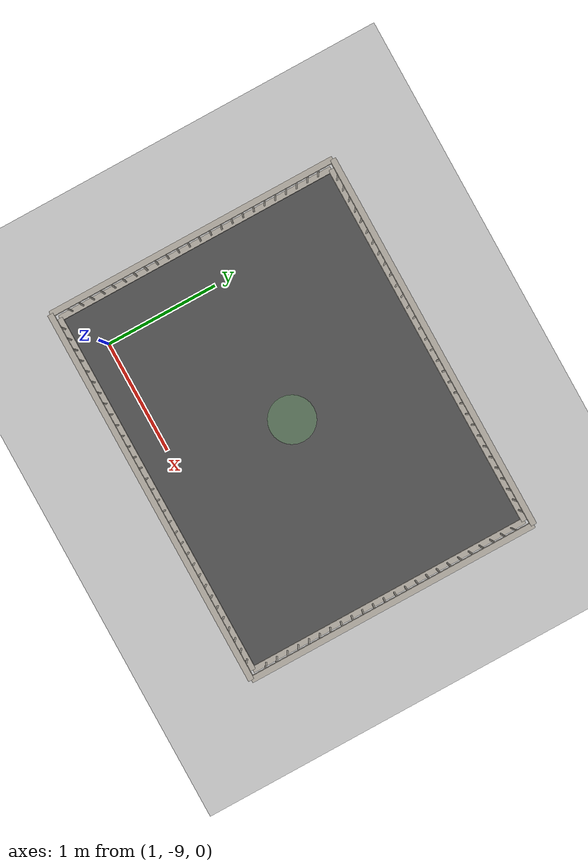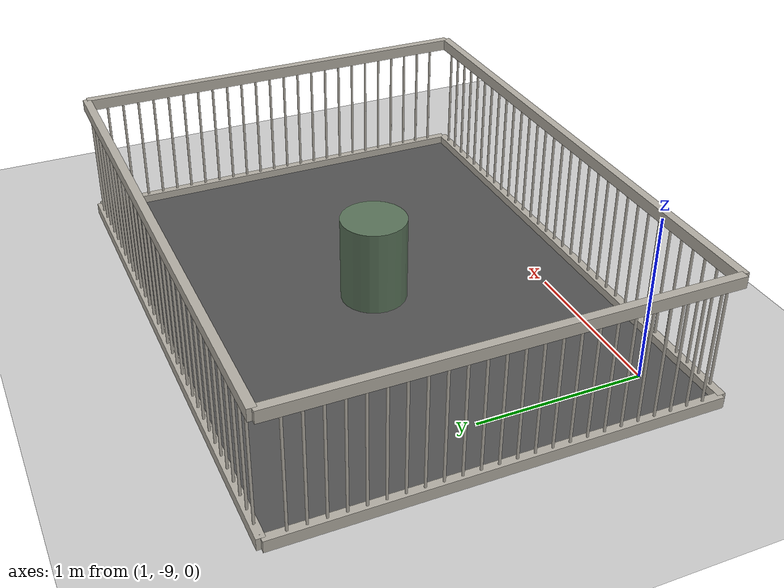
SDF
<sdf version="1.9">
 <world name="pig_pen_16units_world">
  <model name="ground_plane">
   <static>true</static>
   <link name="link">
    <collision name="collision">
     <geometry><plane><normal>0 0 1</normal><size>30 30</size></plane></geometry>
     <surface><friction><ode><mu>1.0</mu><mu2>1.0</mu2></ode></friction></surface>
    </collision>
    <visual name="visual">
     <geometry><plane><normal>0 0 1</normal><size>30 30</size></plane></geometry>
     <material>
      <ambient>0.8 0.8 0.8 1</ambient>
      <diffuse>0.8 0.8 0.8 1</diffuse>
      <specular>0.2 0.2 0.2 1</specular>
     </material>
    </visual>
   </link>
  </model>
  <model name="pen9">
   <pose>2.275 -7.975 0 0 0 0</pose>
   <static>true</static>
   <link name="floor">
    <pose>0 0 0.01 0 0 0</pose>
    <collision name="collision"><geometry><box><size>3.30 2.55 0.02</size></box></geometry></collision>
    <visual name="visual">
     <geometry><box><size>3.30 2.55 0.02</size></box></geometry>
     <material>
      <ambient>0.25 0.25 0.25 1</ambient>
      <diffuse>0.32 0.32 0.32 1</diffuse>
      <specular>0.05 0.05 0.05 1</specular>
     </material>
    </visual>
   </link>
   <link name="left_wall">
    <pose>0 1.275 0.415 0 0 0</pose>
    <collision name="top_rail_col">
     <pose>0 0 0.38 0 0 0</pose>
     <geometry><box><size>3.30 0.05 0.07</size></box></geometry>
    </collision>
    <visual name="top_rail_vis">
     <pose>0 0 0.38 0 0 0</pose>
     <geometry><box><size>3.30 0.05 0.07</size></box></geometry>
     <material><ambient>0.70 0.68 0.64 1</ambient><diffuse>0.70 0.68 0.64 1</diffuse></material>
    </visual>
    <collision name="bottom_rail_col">
     <pose>0 0 -0.38 0 0 0</pose>
     <geometry><box><size>3.30 0.05 0.07</size></box></geometry>
    </collision>
    <visual name="bottom_rail_vis">
     <pose>0 0 -0.38 0 0 0</pose>
     <geometry><box><size>3.30 0.05 0.07</size></box></geometry>
     <material><ambient>0.70 0.68 0.64 1</ambient><diffuse>0.70 0.68 0.64 1</diffuse></material>
    </visual>
    <collision name="bar_01_col">
     <pose>-1.55 0 0 0 0 0</pose>
     <geometry><cylinder><radius>0.0075</radius><length>0.69</length></cylinder></geometry>
    </collision>
    <visual name="bar_01_vis">
     <pose>-1.55 0 0 0 0 0</pose>
     <geometry><cylinder><radius>0.0075</radius><length>0.69</length></cylinder></geometry>
     <material><ambient>0.70 0.68 0.64 1</ambient><diffuse>0.70 0.68 0.64 1</diffuse></material>
    </visual>
    <collision name="bar_02_col">
     <pose>-1.45 0 0 0 0 0</pose>
     <geometry><cylinder><radius>0.0075</radius><length>0.69</length></cylinder></geometry>
    </collision>
    <visual name="bar_02_vis">
     <pose>-1.45 0 0 0 0 0</pose>
     <geometry><cylinder><radius>0.0075</radius><length>0.69</length></cylinder></geometry>
     <material><ambient>0.70 0.68 0.64 1</ambient><diffuse>0.70 0.68 0.64 1</diffuse></material>
    </visual>
    <collision name="bar_03_col">
     <pose>-1.35 0 0 0 0 0</pose>
     <geometry><cylinder><radius>0.0075</radius><length>0.69</length></cylinder></geometry>
    </collision>
    <visual name="bar_03_vis">
     <pose>-1.35 0 0 0 0 0</pose>
     <geometry><cylinder><radius>0.0075</radius><length>0.69</length></cylinder></geometry>
     <material><ambient>0.70 0.68 0.64 1</ambient><diffuse>0.70 0.68 0.64 1</diffuse></material>
    </visual>
    <collision name="bar_04_col">
     <pose>-1.25 0 0 0 0 0</pose>
     <geometry><cylinder><radius>0.0075</radius><length>0.69</length></cylinder></geometry>
    </collision>
    <visual name="bar_04_vis">
     <pose>-1.25 0 0 0 0 0</pose>
     <geometry><cylinder><radius>0.0075</radius><length>0.69</length></cylinder></geometry>
     <material><ambient>0.70 0.68 0.64 1</ambient><diffuse>0.70 0.68 0.64 1</diffuse></material>
    </visual>
    <collision name="bar_05_col">
     <pose>-1.15 0 0 0 0 0</pose>
     <geometry><cylinder><radius>0.0075</radius><length>0.69</length></cylinder></geometry>
    </collision>
    <visual name="bar_05_vis">
     <pose>-1.15 0 0 0 0 0</pose>
     <geometry><cylinder><radius>0.0075</radius><length>0.69</length></cylinder></geometry>
     <material><ambient>0.70 0.68 0.64 1</ambient><diffuse>0.70 0.68 0.64 1</diffuse></material>
    </visual>
    <collision name="bar_06_col">
     <pose>-1.05 0 0 0 0 0</pose>
     <geometry><cylinder><radius>0.0075</radius><length>0.69</length></cylinder></geometry>
    </collision>
    <visual name="bar_06_vis">
     <pose>-1.05 0 0 0 0 0</pose>
     <geometry><cylinder><radius>0.0075</radius><length>0.69</length></cylinder></geometry>
     <material><ambient>0.70 0.68 0.64 1</ambient><diffuse>0.70 0.68 0.64 1</diffuse></material>
    </visual>
    <collision name="bar_07_col">
     <pose>-0.95 0 0 0 0 0</pose>
     <geometry><cylinder><radius>0.0075</radius><length>0.69</length></cylinder></geometry>
    </collision>
    <visual name="bar_07_vis">
     <pose>-0.95 0 0 0 0 0</pose>
     <geometry><cylinder><radius>0.0075</radius><length>0.69</length></cylinder></geometry>
     <material><ambient>0.70 0.68 0.64 1</ambient><diffuse>0.70 0.68 0.64 1</diffuse></material>
    </visual>
    <collision name="bar_08_col">
     <pose>-0.85 0 0 0 0 0</pose>
     <geometry><cylinder><radius>0.0075</radius><length>0.69</length></cylinder></geometry>
    </collision>
    <visual name="bar_08_vis">
     <pose>-0.85 0 0 0 0 0</pose>
     <geometry><cylinder><radius>0.0075</radius><length>0.69</length></cylinder></geometry>
     <material><ambient>0.70 0.68 0.64 1</ambient><diffuse>0.70 0.68 0.64 1</diffuse></material>
    </visual>
    <collision name="bar_09_col">
     <pose>-0.75 0 0 0 0 0</pose>
     <geometry><cylinder><radius>0.0075</radius><length>0.69</length></cylinder></geometry>
    </collision>
    <visual name="bar_09_vis">
     <pose>-0.75 0 0 0 0 0</pose>
     <geometry><cylinder><radius>0.0075</radius><length>0.69</length></cylinder></geometry>
     <material><ambient>0.70 0.68 0.64 1</ambient><diffuse>0.70 0.68 0.64 1</diffuse></material>
    </visual>
    <collision name="bar_10_col">
     <pose>-0.65 0 0 0 0 0</pose>
     <geometry><cylinder><radius>0.0075</radius><length>0.69</length></cylinder></geometry>
    </collision>
    <visual name="bar_10_vis">
     <pose>-0.65 0 0 0 0 0</pose>
     <geometry><cylinder><radius>0.0075</radius><length>0.69</length></cylinder></geometry>
     <material><ambient>0.70 0.68 0.64 1</ambient><diffuse>0.70 0.68 0.64 1</diffuse></material>
    </visual>
    <collision name="bar_11_col">
     <pose>-0.55 0 0 0 0 0</pose>
     <geometry><cylinder><radius>0.0075</radius><length>0.69</length></cylinder></geometry>
    </collision>
    <visual name="bar_11_vis">
     <pose>-0.55 0 0 0 0 0</pose>
     <geometry><cylinder><radius>0.0075</radius><length>0.69</length></cylinder></geometry>
     <material><ambient>0.70 0.68 0.64 1</ambient><diffuse>0.70 0.68 0.64 1</diffuse></material>
    </visual>
    <collision name="bar_12_col">
     <pose>-0.45 0 0 0 0 0</pose>
     <geometry><cylinder><radius>0.0075</radius><length>0.69</length></cylinder></geometry>
    </collision>
    <visual name="bar_12_vis">
     <pose>-0.45 0 0 0 0 0</pose>
     <geometry><cylinder><radius>0.0075</radius><length>0.69</length></cylinder></geometry>
     <material><ambient>0.70 0.68 0.64 1</ambient><diffuse>0.70 0.68 0.64 1</diffuse></material>
    </visual>
    <collision name="bar_13_col">
     <pose>-0.35 0 0 0 0 0</pose>
     <geometry><cylinder><radius>0.0075</radius><length>0.69</length></cylinder></geometry>
    </collision>
    <visual name="bar_13_vis">
     <pose>-0.35 0 0 0 0 0</pose>
     <geometry><cylinder><radius>0.0075</radius><length>0.69</length></cylinder></geometry>
     <material><ambient>0.70 0.68 0.64 1</ambient><diffuse>0.70 0.68 0.64 1</diffuse></material>
    </visual>
    <collision name="bar_14_col">
     <pose>-0.25 0 0 0 0 0</pose>
     <geometry><cylinder><radius>0.0075</radius><length>0.69</length></cylinder></geometry>
    </collision>
    <visual name="bar_14_vis">
     <pose>-0.25 0 0 0 0 0</pose>
     <geometry><cylinder><radius>0.0075</radius><length>0.69</length></cylinder></geometry>
     <material><ambient>0.70 0.68 0.64 1</ambient><diffuse>0.70 0.68 0.64 1</diffuse></material>
    </visual>
    <collision name="bar_15_col">
     <pose>-0.15 0 0 0 0 0</pose>
     <geometry><cylinder><radius>0.0075</radius><length>0.69</length></cylinder></geometry>
    </collision>
    <visual name="bar_15_vis">
     <pose>-0.15 0 0 0 0 0</pose>
     <geometry><cylinder><radius>0.0075</radius><length>0.69</length></cylinder></geometry>
     <material><ambient>0.70 0.68 0.64 1</ambient><diffuse>0.70 0.68 0.64 1</diffuse></material>
    </visual>
    <collision name="bar_16_col">
     <pose>-0.05 0 0 0 0 0</pose>
     <geometry><cylinder><radius>0.0075</radius><length>0.69</length></cylinder></geometry>
    </collision>
    <visual name="bar_16_vis">
     <pose>-0.05 0 0 0 0 0</pose>
     <geometry><cylinder><radius>0.0075</radius><length>0.69</length></cylinder></geometry>
     <material><ambient>0.70 0.68 0.64 1</ambient><diffuse>0.70 0.68 0.64 1</diffuse></material>
    </visual>
    <collision name="bar_17_col">
     <pose>0.05 0 0 0 0 0</pose>
     <geometry><cylinder><radius>0.0075</radius><length>0.69</length></cylinder></geometry>
    </collision>
    <visual name="bar_17_vis">
     <pose>0.05 0 0 0 0 0</pose>
     <geometry><cylinder><radius>0.0075</radius><length>0.69</length></cylinder></geometry>
     <material><ambient>0.70 0.68 0.64 1</ambient><diffuse>0.70 0.68 0.64 1</diffuse></material>
    </visual>
    <collision name="bar_18_col">
     <pose>0.15 0 0 0 0 0</pose>
     <geometry><cylinder><radius>0.0075</radius><length>0.69</length></cylinder></geometry>
    </collision>
    <visual name="bar_18_vis">
     <pose>0.15 0 0 0 0 0</pose>
     <geometry><cylinder><radius>0.0075</radius><length>0.69</length></cylinder></geometry>
     <material><ambient>0.70 0.68 0.64 1</ambient><diffuse>0.70 0.68 0.64 1</diffuse></material>
    </visual>
    <collision name="bar_19_col">
     <pose>0.25 0 0 0 0 0</pose>
     <geometry><cylinder><radius>0.0075</radius><length>0.69</length></cylinder></geometry>
    </collision>
    <visual name="bar_19_vis">
     <pose>0.25 0 0 0 0 0</pose>
     <geometry><cylinder><radius>0.0075</radius><length>0.69</length></cylinder></geometry>
     <material><ambient>0.70 0.68 0.64 1</ambient><diffuse>0.70 0.68 0.64 1</diffuse></material>
    </visual>
    <collision name="bar_20_col">
     <pose>0.35 0 0 0 0 0</pose>
     <geometry><cylinder><radius>0.0075</radius><length>0.69</length></cylinder></geometry>
    </collision>
    <visual name="bar_20_vis">
     <pose>0.35 0 0 0 0 0</pose>
     <geometry><cylinder><radius>0.0075</radius><length>0.69</length></cylinder></geometry>
     <material><ambient>0.70 0.68 0.64 1</ambient><diffuse>0.70 0.68 0.64 1</diffuse></material>
    </visual>
    <collision name="bar_21_col">
     <pose>0.45 0 0 0 0 0</pose>
     <geometry><cylinder><radius>0.0075</radius><length>0.69</length></cylinder></geometry>
    </collision>
    <visual name="bar_21_vis">
     <pose>0.45 0 0 0 0 0</pose>
     <geometry><cylinder><radius>0.0075</radius><length>0.69</length></cylinder></geometry>
     <material><ambient>0.70 0.68 0.64 1</ambient><diffuse>0.70 0.68 0.64 1</diffuse></material>
    </visual>
    <collision name="bar_22_col">
     <pose>0.55 0 0 0 0 0</pose>
     <geometry><cylinder><radius>0.0075</radius><length>0.69</length></cylinder></geometry>
    </collision>
    <visual name="bar_22_vis">
     <pose>0.55 0 0 0 0 0</pose>
     <geometry><cylinder><radius>0.0075</radius><length>0.69</length></cylinder></geometry>
     <material><ambient>0.70 0.68 0.64 1</ambient><diffuse>0.70 0.68 0.64 1</diffuse></material>
    </visual>
    <collision name="bar_23_col">
     <pose>0.65 0 0 0 0 0</pose>
     <geometry><cylinder><radius>0.0075</radius><length>0.69</length></cylinder></geometry>
    </collision>
    <visual name="bar_23_vis">
     <pose>0.65 0 0 0 0 0</pose>
     <geometry><cylinder><radius>0.0075</radius><length>0.69</length></cylinder></geometry>
     <material><ambient>0.70 0.68 0.64 1</ambient><diffuse>0.70 0.68 0.64 1</diffuse></material>
    </visual>
    <collision name="bar_24_col">
     <pose>0.75 0 0 0 0 0</pose>
     <geometry><cylinder><radius>0.0075</radius><length>0.69</length></cylinder></geometry>
    </collision>
    <visual name="bar_24_vis">
     <pose>0.75 0 0 0 0 0</pose>
     <geometry><cylinder><radius>0.0075</radius><length>0.69</length></cylinder></geometry>
     <material><ambient>0.70 0.68 0.64 1</ambient><diffuse>0.70 0.68 0.64 1</diffuse></material>
    </visual>
    <collision name="bar_25_col">
     <pose>0.85 0 0 0 0 0</pose>
     <geometry><cylinder><radius>0.0075</radius><length>0.69</length></cylinder></geometry>
    </collision>
    <visual name="bar_25_vis">
     <pose>0.85 0 0 0 0 0</pose>
     <geometry><cylinder><radius>0.0075</radius><length>0.69</length></cylinder></geometry>
     <material><ambient>0.70 0.68 0.64 1</ambient><diffuse>0.70 0.68 0.64 1</diffuse></material>
    </visual>
    <collision name="bar_26_col">
     <pose>0.95 0 0 0 0 0</pose>
     <geometry><cylinder><radius>0.0075</radius><length>0.69</length></cylinder></geometry>
    </collision>
    <visual name="bar_26_vis">
     <pose>0.95 0 0 0 0 0</pose>
     <geometry><cylinder><radius>0.0075</radius><length>0.69</length></cylinder></geometry>
     <material><ambient>0.70 0.68 0.64 1</ambient><diffuse>0.70 0.68 0.64 1</diffuse></material>
    </visual>
    <collision name="bar_27_col">
     <pose>1.05 0 0 0 0 0</pose>
     <geometry><cylinder><radius>0.0075</radius><length>0.69</length></cylinder></geometry>
    </collision>
    <visual name="bar_27_vis">
     <pose>1.05 0 0 0 0 0</pose>
     <geometry><cylinder><radius>0.0075</radius><length>0.69</length></cylinder></geometry>
     <material><ambient>0.70 0.68 0.64 1</ambient><diffuse>0.70 0.68 0.64 1</diffuse></material>
    </visual>
    <collision name="bar_28_col">
     <pose>1.15 0 0 0 0 0</pose>
     <geometry><cylinder><radius>0.0075</radius><length>0.69</length></cylinder></geometry>
    </collision>
    <visual name="bar_28_vis">
     <pose>1.15 0 0 0 0 0</pose>
     <geometry><cylinder><radius>0.0075</radius><length>0.69</length></cylinder></geometry>
     <material><ambient>0.70 0.68 0.64 1</ambient><diffuse>0.70 0.68 0.64 1</diffuse></material>
    </visual>
    <collision name="bar_29_col">
     <pose>1.25 0 0 0 0 0</pose>
     <geometry><cylinder><radius>0.0075</radius><length>0.69</length></cylinder></geometry>
    </collision>
    <visual name="bar_29_vis">
     <pose>1.25 0 0 0 0 0</pose>
     <geometry><cylinder><radius>0.0075</radius><length>0.69</length></cylinder></geometry>
     <material><ambient>0.70 0.68 0.64 1</ambient><diffuse>0.70 0.68 0.64 1</diffuse></material>
    </visual>
    <collision name="bar_30_col">
     <pose>1.35 0 0 0 0 0</pose>
     <geometry><cylinder><radius>0.0075</radius><length>0.69</length></cylinder></geometry>
    </collision>
    <visual name="bar_30_vis">
     <pose>1.35 0 0 0 0 0</pose>
     <geometry><cylinder><radius>0.0075</radius><length>0.69</length></cylinder></geometry>
     <material><ambient>0.70 0.68 0.64 1</ambient><diffuse>0.70 0.68 0.64 1</diffuse></material>
    </visual>
    <collision name="bar_31_col">
     <pose>1.45 0 0 0 0 0</pose>
     <geometry><cylinder><radius>0.0075</radius><length>0.69</length></cylinder></geometry>
    </collision>
    <visual name="bar_31_vis">
     <pose>1.45 0 0 0 0 0</pose>
     <geometry><cylinder><radius>0.0075</radius><length>0.69</length></cylinder></geometry>
     <material><ambient>0.70 0.68 0.64 1</ambient><diffuse>0.70 0.68 0.64 1</diffuse></material>
    </visual>
    <collision name="bar_32_col">
     <pose>1.55 0 0 0 0 0</pose>
     <geometry><cylinder><radius>0.0075</radius><length>0.69</length></cylinder></geometry>
    </collision>
    <visual name="bar_32_vis">
     <pose>1.55 0 0 0 0 0</pose>
     <geometry><cylinder><radius>0.0075</radius><length>0.69</length></cylinder></geometry>
     <material><ambient>0.70 0.68 0.64 1</ambient><diffuse>0.70 0.68 0.64 1</diffuse></material>
    </visual>
   </link>
   <link name="right_wall">
    <pose>0 -1.275 0.415 0 0 0</pose>
    <collision name="top_rail_col">
     <pose>0 0 0.38 0 0 0</pose>
     <geometry><box><size>3.30 0.05 0.07</size></box></geometry>
    </collision>
    <visual name="top_rail_vis">
     <pose>0 0 0.38 0 0 0</pose>
     <geometry><box><size>3.30 0.05 0.07</size></box></geometry>
     <material><ambient>0.70 0.68 0.64 1</ambient><diffuse>0.70 0.68 0.64 1</diffuse></material>
    </visual>
    <collision name="bottom_rail_col">
     <pose>0 0 -0.38 0 0 0</pose>
     <geometry><box><size>3.30 0.05 0.07</size></box></geometry>
    </collision>
    <visual name="bottom_rail_vis">
     <pose>0 0 -0.38 0 0 0</pose>
     <geometry><box><size>3.30 0.05 0.07</size></box></geometry>
     <material><ambient>0.70 0.68 0.64 1</ambient><diffuse>0.70 0.68 0.64 1</diffuse></material>
    </visual>
    <collision name="bar_01_col">
     <pose>-1.55 0 0 0 0 0</pose>
     <geometry><cylinder><radius>0.0075</radius><length>0.69</length></cylinder></geometry>
    </collision>
    <visual name="bar_01_vis">
     <pose>-1.55 0 0 0 0 0</pose>
     <geometry><cylinder><radius>0.0075</radius><length>0.69</length></cylinder></geometry>
     <material><ambient>0.70 0.68 0.64 1</ambient><diffuse>0.70 0.68 0.64 1</diffuse></material>
    </visual>
    <collision name="bar_02_col">
     <pose>-1.45 0 0 0 0 0</pose>
     <geometry><cylinder><radius>0.0075</radius><length>0.69</length></cylinder></geometry>
    </collision>
    <visual name="bar_02_vis">
     <pose>-1.45 0 0 0 0 0</pose>
     <geometry><cylinder><radius>0.0075</radius><length>0.69</length></cylinder></geometry>
     <material><ambient>0.70 0.68 0.64 1</ambient><diffuse>0.70 0.68 0.64 1</diffuse></material>
    </visual>
    <collision name="bar_03_col">
     <pose>-1.35 0 0 0 0 0</pose>
     <geometry><cylinder><radius>0.0075</radius><length>0.69</length></cylinder></geometry>
    </collision>
    <visual name="bar_03_vis">
     <pose>-1.35 0 0 0 0 0</pose>
     <geometry><cylinder><radius>0.0075</radius><length>0.69</length></cylinder></geometry>
     <material><ambient>0.70 0.68 0.64 1</ambient><diffuse>0.70 0.68 0.64 1</diffuse></material>
    </visual>
    <collision name="bar_04_col">
     <pose>-1.25 0 0 0 0 0</pose>
     <geometry><cylinder><radius>0.0075</radius><length>0.69</length></cylinder></geometry>
    </collision>
    <visual name="bar_04_vis">
     <pose>-1.25 0 0 0 0 0</pose>
     <geometry><cylinder><radius>0.0075</radius><length>0.69</length></cylinder></geometry>
     <material><ambient>0.70 0.68 0.64 1</ambient><diffuse>0.70 0.68 0.64 1</diffuse></material>
    </visual>
    <collision name="bar_05_col">
     <pose>-1.15 0 0 0 0 0</pose>
     <geometry><cylinder><radius>0.0075</radius><length>0.69</length></cylinder></geometry>
    </collision>
    <visual name="bar_05_vis">
     <pose>-1.15 0 0 0 0 0</pose>
     <geometry><cylinder><radius>0.0075</radius><length>0.69</length></cylinder></geometry>
     <material><ambient>0.70 0.68 0.64 1</ambient><diffuse>0.70 0.68 0.64 1</diffuse></material>
    </visual>
    <collision name="bar_06_col">
     <pose>-1.05 0 0 0 0 0</pose>
     <geometry><cylinder><radius>0.0075</radius><length>0.69</length></cylinder></geometry>
    </collision>
    <visual name="bar_06_vis">
     <pose>-1.05 0 0 0 0 0</pose>
     <geometry><cylinder><radius>0.0075</radius><length>0.69</length></cylinder></geometry>
     <material><ambient>0.70 0.68 0.64 1</ambient><diffuse>0.70 0.68 0.64 1</diffuse></material>
    </visual>
    <collision name="bar_07_col">
     <pose>-0.95 0 0 0 0 0</pose>
     <geometry><cylinder><radius>0.0075</radius><length>0.69</length></cylinder></geometry>
    </collision>
    <visual name="bar_07_vis">
     <pose>-0.95 0 0 0 0 0</pose>
     <geometry><cylinder><radius>0.0075</radius><length>0.69</length></cylinder></geometry>
     <material><ambient>0.70 0.68 0.64 1</ambient><diffuse>0.70 0.68 0.64 1</diffuse></material>
    </visual>
    <collision name="bar_08_col">
     <pose>-0.85 0 0 0 0 0</pose>
     <geometry><cylinder><radius>0.0075</radius><length>0.69</length></cylinder></geometry>
    </collision>
    <visual name="bar_08_vis">
     <pose>-0.85 0 0 0 0 0</pose>
     <geometry><cylinder><radius>0.0075</radius><length>0.69</length></cylinder></geometry>
     <material><ambient>0.70 0.68 0.64 1</ambient><diffuse>0.70 0.68 0.64 1</diffuse></material>
    </visual>
    <collision name="bar_09_col">
     <pose>-0.75 0 0 0 0 0</pose>
     <geometry><cylinder><radius>0.0075</radius><length>0.69</length></cylinder></geometry>
    </collision>
    <visual name="bar_09_vis">
     <pose>-0.75 0 0 0 0 0</pose>
     <geometry><cylinder><radius>0.0075</radius><length>0.69</length></cylinder></geometry>
     <material><ambient>0.70 0.68 0.64 1</ambient><diffuse>0.70 0.68 0.64 1</diffuse></material>
    </visual>
    <collision name="bar_10_col">
     <pose>-0.65 0 0 0 0 0</pose>
     <geometry><cylinder><radius>0.0075</radius><length>0.69</length></cylinder></geometry>
    </collision>
    <visual name="bar_10_vis">
     <pose>-0.65 0 0 0 0 0</pose>
     <geometry><cylinder><radius>0.0075</radius><length>0.69</length></cylinder></geometry>
     <material><ambient>0.70 0.68 0.64 1</ambient><diffuse>0.70 0.68 0.64 1</diffuse></material>
    </visual>
    <collision name="bar_11_col">
     <pose>-0.55 0 0 0 0 0</pose>
     <geometry><cylinder><radius>0.0075</radius><length>0.69</length></cylinder></geometry>
    </collision>
    <visual name="bar_11_vis">
     <pose>-0.55 0 0 0 0 0</pose>
     <geometry><cylinder><radius>0.0075</radius><length>0.69</length></cylinder></geometry>
     <material><ambient>0.70 0.68 0.64 1</ambient><diffuse>0.70 0.68 0.64 1</diffuse></material>
    </visual>
    <collision name="bar_12_col">
     <pose>-0.45 0 0 0 0 0</pose>
     <geometry><cylinder><radius>0.0075</radius><length>0.69</length></cylinder></geometry>
    </collision>
    <visual name="bar_12_vis">
     <pose>-0.45 0 0 0 0 0</pose>
     <geometry><cylinder><radius>0.0075</radius><length>0.69</length></cylinder></geometry>
     <material><ambient>0.70 0.68 0.64 1</ambient><diffuse>0.70 0.68 0.64 1</diffuse></material>
    </visual>
    <collision name="bar_13_col">
     <pose>-0.35 0 0 0 0 0</pose>
     <geometry><cylinder><radius>0.0075</radius><length>0.69</length></cylinder></geometry>
    </collision>
    <visual name="bar_13_vis">
     <pose>-0.35 0 0 0 0 0</pose>
     <geometry><cylinder><radius>0.0075</radius><length>0.69</length></cylinder></geometry>
     <material><ambient>0.70 0.68 0.64 1</ambient><diffuse>0.70 0.68 0.64 1</diffuse></material>
    </visual>
    <collision name="bar_14_col">
     <pose>-0.25 0 0 0 0 0</pose>
     <geometry><cylinder><radius>0.0075</radius><length>0.69</length></cylinder></geometry>
    </collision>
    <visual name="bar_14_vis">
     <pose>-0.25 0 0 0 0 0</pose>
     <geometry><cylinder><radius>0.0075</radius><length>0.69</length></cylinder></geometry>
     <material><ambient>0.70 0.68 0.64 1</ambient><diffuse>0.70 0.68 0.64 1</diffuse></material>
    </visual>
    <collision name="bar_15_col">
     <pose>-0.15 0 0 0 0 0</pose>
     <geometry><cylinder><radius>0.0075</radius><length>0.69</length></cylinder></geometry>
    </collision>
    <visual name="bar_15_vis">
     <pose>-0.15 0 0 0 0 0</pose>
     <geometry><cylinder><radius>0.0075</radius><length>0.69</length></cylinder></geometry>
     <material><ambient>0.70 0.68 0.64 1</ambient><diffuse>0.70 0.68 0.64 1</diffuse></material>
    </visual>
    <collision name="bar_16_col">
     <pose>-0.05 0 0 0 0 0</pose>
     <geometry><cylinder><radius>0.0075</radius><length>0.69</length></cylinder></geometry>
    </collision>
    <visual name="bar_16_vis">
     <pose>-0.05 0 0 0 0 0</pose>
     <geometry><cylinder><radius>0.0075</radius><length>0.69</length></cylinder></geometry>
     <material><ambient>0.70 0.68 0.64 1</ambient><diffuse>0.70 0.68 0.64 1</diffuse></material>
    </visual>
    <collision name="bar_17_col">
     <pose>0.05 0 0 0 0 0</pose>
     <geometry><cylinder><radius>0.0075</radius><length>0.69</length></cylinder></geometry>
    </collision>
    <visual name="bar_17_vis">
     <pose>0.05 0 0 0 0 0</pose>
     <geometry><cylinder><radius>0.0075</radius><length>0.69</length></cylinder></geometry>
     <material><ambient>0.70 0.68 0.64 1</ambient><diffuse>0.70 0.68 0.64 1</diffuse></material>
    </visual>
    <collision name="bar_18_col">
     <pose>0.15 0 0 0 0 0</pose>
     <geometry><cylinder><radius>0.0075</radius><length>0.69</length></cylinder></geometry>
    </collision>
    <visual name="bar_18_vis">
     <pose>0.15 0 0 0 0 0</pose>
     <geometry><cylinder><radius>0.0075</radius><length>0.69</length></cylinder></geometry>
     <material><ambient>0.70 0.68 0.64 1</ambient><diffuse>0.70 0.68 0.64 1</diffuse></material>
    </visual>
    <collision name="bar_19_col">
     <pose>0.25 0 0 0 0 0</pose>
     <geometry><cylinder><radius>0.0075</radius><length>0.69</length></cylinder></geometry>
    </collision>
    <visual name="bar_19_vis">
     <pose>0.25 0 0 0 0 0</pose>
     <geometry><cylinder><radius>0.0075</radius><length>0.69</length></cylinder></geometry>
     <material><ambient>0.70 0.68 0.64 1</ambient><diffuse>0.70 0.68 0.64 1</diffuse></material>
    </visual>
    <collision name="bar_20_col">
     <pose>0.35 0 0 0 0 0</pose>
     <geometry><cylinder><radius>0.0075</radius><length>0.69</length></cylinder></geometry>
    </collision>
    <visual name="bar_20_vis">
     <pose>0.35 0 0 0 0 0</pose>
     <geometry><cylinder><radius>0.0075</radius><length>0.69</length></cylinder></geometry>
     <material><ambient>0.70 0.68 0.64 1</ambient><diffuse>0.70 0.68 0.64 1</diffuse></material>
    </visual>
    <collision name="bar_21_col">
     <pose>0.45 0 0 0 0 0</pose>
     <geometry><cylinder><radius>0.0075</radius><length>0.69</length></cylinder></geometry>
    </collision>
    <visual name="bar_21_vis">
     <pose>0.45 0 0 0 0 0</pose>
     <geometry><cylinder><radius>0.0075</radius><length>0.69</length></cylinder></geometry>
     <material><ambient>0.70 0.68 0.64 1</ambient><diffuse>0.70 0.68 0.64 1</diffuse></material>
    </visual>
    <collision name="bar_22_col">
     <pose>0.55 0 0 0 0 0</pose>
     <geometry><cylinder><radius>0.0075</radius><length>0.69</length></cylinder></geometry>
    </collision>
    <visual name="bar_22_vis">
     <pose>0.55 0 0 0 0 0</pose>
     <geometry><cylinder><radius>0.0075</radius><length>0.69</length></cylinder></geometry>
     <material><ambient>0.70 0.68 0.64 1</ambient><diffuse>0.70 0.68 0.64 1</diffuse></material>
    </visual>
    <collision name="bar_23_col">
     <pose>0.65 0 0 0 0 0</pose>
     <geometry><cylinder><radius>0.0075</radius><length>0.69</length></cylinder></geometry>
    </collision>
    <visual name="bar_23_vis">
     <pose>0.65 0 0 0 0 0</pose>
     <geometry><cylinder><radius>0.0075</radius><length>0.69</length></cylinder></geometry>
     <material><ambient>0.70 0.68 0.64 1</ambient><diffuse>0.70 0.68 0.64 1</diffuse></material>
    </visual>
    <collision name="bar_24_col">
     <pose>0.75 0 0 0 0 0</pose>
     <geometry><cylinder><radius>0.0075</radius><length>0.69</length></cylinder></geometry>
    </collision>
    <visual name="bar_24_vis">
     <pose>0.75 0 0 0 0 0</pose>
     <geometry><cylinder><radius>0.0075</radius><length>0.69</length></cylinder></geometry>
     <material><ambient>0.70 0.68 0.64 1</ambient><diffuse>0.70 0.68 0.64 1</diffuse></material>
    </visual>
    <collision name="bar_25_col">
     <pose>0.85 0 0 0 0 0</pose>
     <geometry><cylinder><radius>0.0075</radius><length>0.69</length></cylinder></geometry>
    </collision>
    <visual name="bar_25_vis">
     <pose>0.85 0 0 0 0 0</pose>
     <geometry><cylinder><radius>0.0075</radius><length>0.69</length></cylinder></geometry>
     <material><ambient>0.70 0.68 0.64 1</ambient><diffuse>0.70 0.68 0.64 1</diffuse></material>
    </visual>
    <collision name="bar_26_col">
     <pose>0.95 0 0 0 0 0</pose>
     <geometry><cylinder><radius>0.0075</radius><length>0.69</length></cylinder></geometry>
    </collision>
    <visual name="bar_26_vis">
     <pose>0.95 0 0 0 0 0</pose>
     <geometry><cylinder><radius>0.0075</radius><length>0.69</length></cylinder></geometry>
     <material><ambient>0.70 0.68 0.64 1</ambient><diffuse>0.70 0.68 0.64 1</diffuse></material>
    </visual>
    <collision name="bar_27_col">
     <pose>1.05 0 0 0 0 0</pose>
     <geometry><cylinder><radius>0.0075</radius><length>0.69</length></cylinder></geometry>
    </collision>
    <visual name="bar_27_vis">
     <pose>1.05 0 0 0 0 0</pose>
     <geometry><cylinder><radius>0.0075</radius><length>0.69</length></cylinder></geometry>
     <material><ambient>0.70 0.68 0.64 1</ambient><diffuse>0.70 0.68 0.64 1</diffuse></material>
    </visual>
    <collision name="bar_28_col">
     <pose>1.15 0 0 0 0 0</pose>
     <geometry><cylinder><radius>0.0075</radius><length>0.69</length></cylinder></geometry>
    </collision>
    <visual name="bar_28_vis">
     <pose>1.15 0 0 0 0 0</pose>
     <geometry><cylinder><radius>0.0075</radius><length>0.69</length></cylinder></geometry>
     <material><ambient>0.70 0.68 0.64 1</ambient><diffuse>0.70 0.68 0.64 1</diffuse></material>
    </visual>
    <collision name="bar_29_col">
     <pose>1.25 0 0 0 0 0</pose>
     <geometry><cylinder><radius>0.0075</radius><length>0.69</length></cylinder></geometry>
    </collision>
    <visual name="bar_29_vis">
     <pose>1.25 0 0 0 0 0</pose>
     <geometry><cylinder><radius>0.0075</radius><length>0.69</length></cylinder></geometry>
     <material><ambient>0.70 0.68 0.64 1</ambient><diffuse>0.70 0.68 0.64 1</diffuse></material>
    </visual>
    <collision name="bar_30_col">
     <pose>1.35 0 0 0 0 0</pose>
     <geometry><cylinder><radius>0.0075</radius><length>0.69</length></cylinder></geometry>
    </collision>
    <visual name="bar_30_vis">
     <pose>1.35 0 0 0 0 0</pose>
     <geometry><cylinder><radius>0.0075</radius><length>0.69</length></cylinder></geometry>
     <material><ambient>0.70 0.68 0.64 1</ambient><diffuse>0.70 0.68 0.64 1</diffuse></material>
    </visual>
    <collision name="bar_31_col">
     <pose>1.45 0 0 0 0 0</pose>
     <geometry><cylinder><radius>0.0075</radius><length>0.69</length></cylinder></geometry>
    </collision>
    <visual name="bar_31_vis">
     <pose>1.45 0 0 0 0 0</pose>
     <geometry><cylinder><radius>0.0075</radius><length>0.69</length></cylinder></geometry>
     <material><ambient>0.70 0.68 0.64 1</ambient><diffuse>0.70 0.68 0.64 1</diffuse></material>
    </visual>
    <collision name="bar_32_col">
     <pose>1.55 0 0 0 0 0</pose>
     <geometry><cylinder><radius>0.0075</radius><length>0.69</length></cylinder></geometry>
    </collision>
    <visual name="bar_32_vis">
     <pose>1.55 0 0 0 0 0</pose>
     <geometry><cylinder><radius>0.0075</radius><length>0.69</length></cylinder></geometry>
     <material><ambient>0.70 0.68 0.64 1</ambient><diffuse>0.70 0.68 0.64 1</diffuse></material>
    </visual>
   </link>
   <link name="back_wall">
    <pose>1.65 0 0.415 0 0 0</pose>
    <collision name="top_rail_col">
     <pose>0 0 0.38 0 0 0</pose>
     <geometry><box><size>0.05 2.55 0.07</size></box></geometry>
    </collision>
    <visual name="top_rail_vis">
     <pose>0 0 0.38 0 0 0</pose>
     <geometry><box><size>0.05 2.55 0.07</size></box></geometry>
     <material><ambient>0.70 0.68 0.64 1</ambient><diffuse>0.70 0.68 0.64 1</diffuse></material>
    </visual>
    <collision name="bottom_rail_col">
     <pose>0 0 -0.38 0 0 0</pose>
     <geometry><box><size>0.05 2.55 0.07</size></box></geometry>
    </collision>
    <visual name="bottom_rail_vis">
     <pose>0 0 -0.38 0 0 0</pose>
     <geometry><box><size>0.05 2.55 0.07</size></box></geometry>
     <material><ambient>0.70 0.68 0.64 1</ambient><diffuse>0.70 0.68 0.64 1</diffuse></material>
    </visual>
    <collision name="bar_01_col">
     <pose>0 -1.15 0 0 0 0</pose>
     <geometry><cylinder><radius>0.0075</radius><length>0.69</length></cylinder></geometry>
    </collision>
    <visual name="bar_01_vis">
     <pose>0 -1.15 0 0 0 0</pose>
     <geometry><cylinder><radius>0.0075</radius><length>0.69</length></cylinder></geometry>
     <material><ambient>0.70 0.68 0.64 1</ambient><diffuse>0.70 0.68 0.64 1</diffuse></material>
    </visual>
    <collision name="bar_02_col">
     <pose>0 -1.05 0 0 0 0</pose>
     <geometry><cylinder><radius>0.0075</radius><length>0.69</length></cylinder></geometry>
    </collision>
    <visual name="bar_02_vis">
     <pose>0 -1.05 0 0 0 0</pose>
     <geometry><cylinder><radius>0.0075</radius><length>0.69</length></cylinder></geometry>
     <material><ambient>0.70 0.68 0.64 1</ambient><diffuse>0.70 0.68 0.64 1</diffuse></material>
    </visual>
    <collision name="bar_03_col">
     <pose>0 -0.95 0 0 0 0</pose>
     <geometry><cylinder><radius>0.0075</radius><length>0.69</length></cylinder></geometry>
    </collision>
    <visual name="bar_03_vis">
     <pose>0 -0.95 0 0 0 0</pose>
     <geometry><cylinder><radius>0.0075</radius><length>0.69</length></cylinder></geometry>
     <material><ambient>0.70 0.68 0.64 1</ambient><diffuse>0.70 0.68 0.64 1</diffuse></material>
    </visual>
    <collision name="bar_04_col">
     <pose>0 -0.85 0 0 0 0</pose>
     <geometry><cylinder><radius>0.0075</radius><length>0.69</length></cylinder></geometry>
    </collision>
    <visual name="bar_04_vis">
     <pose>0 -0.85 0 0 0 0</pose>
     <geometry><cylinder><radius>0.0075</radius><length>0.69</length></cylinder></geometry>
     <material><ambient>0.70 0.68 0.64 1</ambient><diffuse>0.70 0.68 0.64 1</diffuse></material>
    </visual>
    <collision name="bar_05_col">
     <pose>0 -0.75 0 0 0 0</pose>
     <geometry><cylinder><radius>0.0075</radius><length>0.69</length></cylinder></geometry>
    </collision>
    <visual name="bar_05_vis">
     <pose>0 -0.75 0 0 0 0</pose>
     <geometry><cylinder><radius>0.0075</radius><length>0.69</length></cylinder></geometry>
     <material><ambient>0.70 0.68 0.64 1</ambient><diffuse>0.70 0.68 0.64 1</diffuse></material>
    </visual>
    <collision name="bar_06_col">
     <pose>0 -0.65 0 0 0 0</pose>
     <geometry><cylinder><radius>0.0075</radius><length>0.69</length></cylinder></geometry>
    </collision>
    <visual name="bar_06_vis">
     <pose>0 -0.65 0 0 0 0</pose>
     <geometry><cylinder><radius>0.0075</radius><length>0.69</length></cylinder></geometry>
     <material><ambient>0.70 0.68 0.64 1</ambient><diffuse>0.70 0.68 0.64 1</diffuse></material>
    </visual>
    <collision name="bar_07_col">
     <pose>0 -0.55 0 0 0 0</pose>
     <geometry><cylinder><radius>0.0075</radius><length>0.69</length></cylinder></geometry>
    </collision>
    <visual name="bar_07_vis">
     <pose>0 -0.55 0 0 0 0</pose>
     <geometry><cylinder><radius>0.0075</radius><length>0.69</length></cylinder></geometry>
     <material><ambient>0.70 0.68 0.64 1</ambient><diffuse>0.70 0.68 0.64 1</diffuse></material>
    </visual>
    <collision name="bar_08_col">
     <pose>0 -0.45 0 0 0 0</pose>
     <geometry><cylinder><radius>0.0075</radius><length>0.69</length></cylinder></geometry>
    </collision>
    <visual name="bar_08_vis">
     <pose>0 -0.45 0 0 0 0</pose>
     <geometry><cylinder><radius>0.0075</radius><length>0.69</length></cylinder></geometry>
     <material><ambient>0.70 0.68 0.64 1</ambient><diffuse>0.70 0.68 0.64 1</diffuse></material>
    </visual>
    <collision name="bar_09_col">
     <pose>0 -0.35 0 0 0 0</pose>
     <geometry><cylinder><radius>0.0075</radius><length>0.69</length></cylinder></geometry>
    </collision>
    <visual name="bar_09_vis">
     <pose>0 -0.35 0 0 0 0</pose>
     <geometry><cylinder><radius>0.0075</radius><length>0.69</length></cylinder></geometry>
     <material><ambient>0.70 0.68 0.64 1</ambient><diffuse>0.70 0.68 0.64 1</diffuse></material>
    </visual>
    <collision name="bar_10_col">
     <pose>0 -0.25 0 0 0 0</pose>
     <geometry><cylinder><radius>0.0075</radius><length>0.69</length></cylinder></geometry>
    </collision>
    <visual name="bar_10_vis">
     <pose>0 -0.25 0 0 0 0</pose>
     <geometry><cylinder><radius>0.0075</radius><length>0.69</length></cylinder></geometry>
     <material><ambient>0.70 0.68 0.64 1</ambient><diffuse>0.70 0.68 0.64 1</diffuse></material>
    </visual>
    <collision name="bar_11_col">
     <pose>0 -0.15 0 0 0 0</pose>
     <geometry><cylinder><radius>0.0075</radius><length>0.69</length></cylinder></geometry>
    </collision>
    <visual name="bar_11_vis">
     <pose>0 -0.15 0 0 0 0</pose>
     <geometry><cylinder><radius>0.0075</radius><length>0.69</length></cylinder></geometry>
     <material><ambient>0.70 0.68 0.64 1</ambient><diffuse>0.70 0.68 0.64 1</diffuse></material>
    </visual>
    <collision name="bar_12_col">
     <pose>0 -0.05 0 0 0 0</pose>
     <geometry><cylinder><radius>0.0075</radius><length>0.69</length></cylinder></geometry>
    </collision>
    <visual name="bar_12_vis">
     <pose>0 -0.05 0 0 0 0</pose>
     <geometry><cylinder><radius>0.0075</radius><length>0.69</length></cylinder></geometry>
     <material><ambient>0.70 0.68 0.64 1</ambient><diffuse>0.70 0.68 0.64 1</diffuse></material>
    </visual>
    <collision name="bar_13_col">
     <pose>0 0.05 0 0 0 0</pose>
     <geometry><cylinder><radius>0.0075</radius><length>0.69</length></cylinder></geometry>
    </collision>
    <visual name="bar_13_vis">
     <pose>0 0.05 0 0 0 0</pose>
     <geometry><cylinder><radius>0.0075</radius><length>0.69</length></cylinder></geometry>
     <material><ambient>0.70 0.68 0.64 1</ambient><diffuse>0.70 0.68 0.64 1</diffuse></material>
    </visual>
    <collision name="bar_14_col">
     <pose>0 0.15 0 0 0 0</pose>
     <geometry><cylinder><radius>0.0075</radius><length>0.69</length></cylinder></geometry>
    </collision>
    <visual name="bar_14_vis">
     <pose>0 0.15 0 0 0 0</pose>
     <geometry><cylinder><radius>0.0075</radius><length>0.69</length></cylinder></geometry>
     <material><ambient>0.70 0.68 0.64 1</ambient><diffuse>0.70 0.68 0.64 1</diffuse></material>
    </visual>
    <collision name="bar_15_col">
     <pose>0 0.25 0 0 0 0</pose>
     <geometry><cylinder><radius>0.0075</radius><length>0.69</length></cylinder></geometry>
    </collision>
    <visual name="bar_15_vis">
     <pose>0 0.25 0 0 0 0</pose>
     <geometry><cylinder><radius>0.0075</radius><length>0.69</length></cylinder></geometry>
     <material><ambient>0.70 0.68 0.64 1</ambient><diffuse>0.70 0.68 0.64 1</diffuse></material>
    </visual>
    <collision name="bar_16_col">
     <pose>0 0.35 0 0 0 0</pose>
     <geometry><cylinder><radius>0.0075</radius><length>0.69</length></cylinder></geometry>
    </collision>
    <visual name="bar_16_vis">
     <pose>0 0.35 0 0 0 0</pose>
     <geometry><cylinder><radius>0.0075</radius><length>0.69</length></cylinder></geometry>
     <material><ambient>0.70 0.68 0.64 1</ambient><diffuse>0.70 0.68 0.64 1</diffuse></material>
    </visual>
    <collision name="bar_17_col">
     <pose>0 0.45 0 0 0 0</pose>
     <geometry><cylinder><radius>0.0075</radius><length>0.69</length></cylinder></geometry>
    </collision>
    <visual name="bar_17_vis">
     <pose>0 0.45 0 0 0 0</pose>
     <geometry><cylinder><radius>0.0075</radius><length>0.69</length></cylinder></geometry>
     <material><ambient>0.70 0.68 0.64 1</ambient><diffuse>0.70 0.68 0.64 1</diffuse></material>
    </visual>
    <collision name="bar_18_col">
     <pose>0 0.55 0 0 0 0</pose>
     <geometry><cylinder><radius>0.0075</radius><length>0.69</length></cylinder></geometry>
    </collision>
    <visual name="bar_18_vis">
     <pose>0 0.55 0 0 0 0</pose>
     <geometry><cylinder><radius>0.0075</radius><length>0.69</length></cylinder></geometry>
     <material><ambient>0.70 0.68 0.64 1</ambient><diffuse>0.70 0.68 0.64 1</diffuse></material>
    </visual>
    <collision name="bar_19_col">
     <pose>0 0.65 0 0 0 0</pose>
     <geometry><cylinder><radius>0.0075</radius><length>0.69</length></cylinder></geometry>
    </collision>
    <visual name="bar_19_vis">
     <pose>0 0.65 0 0 0 0</pose>
     <geometry><cylinder><radius>0.0075</radius><length>0.69</length></cylinder></geometry>
     <material><ambient>0.70 0.68 0.64 1</ambient><diffuse>0.70 0.68 0.64 1</diffuse></material>
    </visual>
    <collision name="bar_20_col">
     <pose>0 0.75 0 0 0 0</pose>
     <geometry><cylinder><radius>0.0075</radius><length>0.69</length></cylinder></geometry>
    </collision>
    <visual name="bar_20_vis">
     <pose>0 0.75 0 0 0 0</pose>
     <geometry><cylinder><radius>0.0075</radius><length>0.69</length></cylinder></geometry>
     <material><ambient>0.70 0.68 0.64 1</ambient><diffuse>0.70 0.68 0.64 1</diffuse></material>
    </visual>
    <collision name="bar_21_col">
     <pose>0 0.85 0 0 0 0</pose>
     <geometry><cylinder><radius>0.0075</radius><length>0.69</length></cylinder></geometry>
    </collision>
    <visual name="bar_21_vis">
     <pose>0 0.85 0 0 0 0</pose>
     <geometry><cylinder><radius>0.0075</radius><length>0.69</length></cylinder></geometry>
     <material><ambient>0.70 0.68 0.64 1</ambient><diffuse>0.70 0.68 0.64 1</diffuse></material>
    </visual>
    <collision name="bar_22_col">
     <pose>0 0.95 0 0 0 0</pose>
     <geometry><cylinder><radius>0.0075</radius><length>0.69</length></cylinder></geometry>
    </collision>
    <visual name="bar_22_vis">
     <pose>0 0.95 0 0 0 0</pose>
     <geometry><cylinder><radius>0.0075</radius><length>0.69</length></cylinder></geometry>
     <material><ambient>0.70 0.68 0.64 1</ambient><diffuse>0.70 0.68 0.64 1</diffuse></material>
    </visual>
    <collision name="bar_23_col">
     <pose>0 1.05 0 0 0 0</pose>
     <geometry><cylinder><radius>0.0075</radius><length>0.69</length></cylinder></geometry>
    </collision>
    <visual name="bar_23_vis">
     <pose>0 1.05 0 0 0 0</pose>
     <geometry><cylinder><radius>0.0075</radius><length>0.69</length></cylinder></geometry>
     <material><ambient>0.70 0.68 0.64 1</ambient><diffuse>0.70 0.68 0.64 1</diffuse></material>
    </visual>
    <collision name="bar_24_col">
     <pose>0 1.15 0 0 0 0</pose>
     <geometry><cylinder><radius>0.0075</radius><length>0.69</length></cylinder></geometry>
    </collision>
    <visual name="bar_24_vis">
     <pose>0 1.15 0 0 0 0</pose>
     <geometry><cylinder><radius>0.0075</radius><length>0.69</length></cylinder></geometry>
     <material><ambient>0.70 0.68 0.64 1</ambient><diffuse>0.70 0.68 0.64 1</diffuse></material>
    </visual>
   </link>
   <link name="front_wall">
    <pose>-1.65 0 0.415 0 0 0</pose>
    <collision name="top_rail_col">
     <pose>0 0 0.38 0 0 0</pose>
     <geometry><box><size>0.05 2.55 0.07</size></box></geometry>
    </collision>
    <visual name="top_rail_vis">
     <pose>0 0 0.38 0 0 0</pose>
     <geometry><box><size>0.05 2.55 0.07</size></box></geometry>
     <material><ambient>0.70 0.68 0.64 1</ambient><diffuse>0.70 0.68 0.64 1</diffuse></material>
    </visual>
    <collision name="bottom_rail_col">
     <pose>0 0 -0.38 0 0 0</pose>
     <geometry><box><size>0.05 2.55 0.07</size></box></geometry>
    </collision>
    <visual name="bottom_rail_vis">
     <pose>0 0 -0.38 0 0 0</pose>
     <geometry><box><size>0.05 2.55 0.07</size></box></geometry>
     <material><ambient>0.70 0.68 0.64 1</ambient><diffuse>0.70 0.68 0.64 1</diffuse></material>
    </visual>
    <collision name="bar_01_col">
     <pose>0 -1.15 0 0 0 0</pose>
     <geometry><cylinder><radius>0.0075</radius><length>0.69</length></cylinder></geometry>
    </collision>
    <visual name="bar_01_vis">
     <pose>0 -1.15 0 0 0 0</pose>
     <geometry><cylinder><radius>0.0075</radius><length>0.69</length></cylinder></geometry>
     <material><ambient>0.70 0.68 0.64 1</ambient><diffuse>0.70 0.68 0.64 1</diffuse></material>
    </visual>
    <collision name="bar_02_col">
     <pose>0 -1.05 0 0 0 0</pose>
     <geometry><cylinder><radius>0.0075</radius><length>0.69</length></cylinder></geometry>
    </collision>
    <visual name="bar_02_vis">
     <pose>0 -1.05 0 0 0 0</pose>
     <geometry><cylinder><radius>0.0075</radius><length>0.69</length></cylinder></geometry>
     <material><ambient>0.70 0.68 0.64 1</ambient><diffuse>0.70 0.68 0.64 1</diffuse></material>
    </visual>
    <collision name="bar_03_col">
     <pose>0 -0.95 0 0 0 0</pose>
     <geometry><cylinder><radius>0.0075</radius><length>0.69</length></cylinder></geometry>
    </collision>
    <visual name="bar_03_vis">
     <pose>0 -0.95 0 0 0 0</pose>
     <geometry><cylinder><radius>0.0075</radius><length>0.69</length></cylinder></geometry>
     <material><ambient>0.70 0.68 0.64 1</ambient><diffuse>0.70 0.68 0.64 1</diffuse></material>
    </visual>
    <collision name="bar_04_col">
     <pose>0 -0.85 0 0 0 0</pose>
     <geometry><cylinder><radius>0.0075</radius><length>0.69</length></cylinder></geometry>
    </collision>
    <visual name="bar_04_vis">
     <pose>0 -0.85 0 0 0 0</pose>
     <geometry><cylinder><radius>0.0075</radius><length>0.69</length></cylinder></geometry>
     <material><ambient>0.70 0.68 0.64 1</ambient><diffuse>0.70 0.68 0.64 1</diffuse></material>
    </visual>
    <collision name="bar_05_col">
     <pose>0 -0.75 0 0 0 0</pose>
     <geometry><cylinder><radius>0.0075</radius><length>0.69</length></cylinder></geometry>
    </collision>
    <visual name="bar_05_vis">
     <pose>0 -0.75 0 0 0 0</pose>
     <geometry><cylinder><radius>0.0075</radius><length>0.69</length></cylinder></geometry>
     <material><ambient>0.70 0.68 0.64 1</ambient><diffuse>0.70 0.68 0.64 1</diffuse></material>
    </visual>
    <collision name="bar_06_col">
     <pose>0 -0.65 0 0 0 0</pose>
     <geometry><cylinder><radius>0.0075</radius><length>0.69</length></cylinder></geometry>
    </collision>
    <visual name="bar_06_vis">
     <pose>0 -0.65 0 0 0 0</pose>
     <geometry><cylinder><radius>0.0075</radius><length>0.69</length></cylinder></geometry>
     <material><ambient>0.70 0.68 0.64 1</ambient><diffuse>0.70 0.68 0.64 1</diffuse></material>
    </visual>
    <collision name="bar_07_col">
     <pose>0 -0.55 0 0 0 0</pose>
     <geometry><cylinder><radius>0.0075</radius><length>0.69</length></cylinder></geometry>
    </collision>
    <visual name="bar_07_vis">
     <pose>0 -0.55 0 0 0 0</pose>
     <geometry><cylinder><radius>0.0075</radius><length>0.69</length></cylinder></geometry>
     <material><ambient>0.70 0.68 0.64 1</ambient><diffuse>0.70 0.68 0.64 1</diffuse></material>
    </visual>
    <collision name="bar_08_col">
     <pose>0 -0.45 0 0 0 0</pose>
     <geometry><cylinder><radius>0.0075</radius><length>0.69</length></cylinder></geometry>
    </collision>
    <visual name="bar_08_vis">
     <pose>0 -0.45 0 0 0 0</pose>
     <geometry><cylinder><radius>0.0075</radius><length>0.69</length></cylinder></geometry>
     <material><ambient>0.70 0.68 0.64 1</ambient><diffuse>0.70 0.68 0.64 1</diffuse></material>
    </visual>
    <collision name="bar_09_col">
     <pose>0 -0.35 0 0 0 0</pose>
     <geometry><cylinder><radius>0.0075</radius><length>0.69</length></cylinder></geometry>
    </collision>
    <visual name="bar_09_vis">
     <pose>0 -0.35 0 0 0 0</pose>
     <geometry><cylinder><radius>0.0075</radius><length>0.69</length></cylinder></geometry>
     <material><ambient>0.70 0.68 0.64 1</ambient><diffuse>0.70 0.68 0.64 1</diffuse></material>
    </visual>
    <collision name="bar_10_col">
     <pose>0 -0.25 0 0 0 0</pose>
     <geometry><cylinder><radius>0.0075</radius><length>0.69</length></cylinder></geometry>
    </collision>
    <visual name="bar_10_vis">
     <pose>0 -0.25 0 0 0 0</pose>
     <geometry><cylinder><radius>0.0075</radius><length>0.69</length></cylinder></geometry>
     <material><ambient>0.70 0.68 0.64 1</ambient><diffuse>0.70 0.68 0.64 1</diffuse></material>
    </visual>
    <collision name="bar_11_col">
     <pose>0 -0.15 0 0 0 0</pose>
     <geometry><cylinder><radius>0.0075</radius><length>0.69</length></cylinder></geometry>
    </collision>
    <visual name="bar_11_vis">
     <pose>0 -0.15 0 0 0 0</pose>
     <geometry><cylinder><radius>0.0075</radius><length>0.69</length></cylinder></geometry>
     <material><ambient>0.70 0.68 0.64 1</ambient><diffuse>0.70 0.68 0.64 1</diffuse></material>
    </visual>
    <collision name="bar_12_col">
     <pose>0 -0.05 0 0 0 0</pose>
     <geometry><cylinder><radius>0.0075</radius><length>0.69</length></cylinder></geometry>
    </collision>
    <visual name="bar_12_vis">
     <pose>0 -0.05 0 0 0 0</pose>
     <geometry><cylinder><radius>0.0075</radius><length>0.69</length></cylinder></geometry>
     <material><ambient>0.70 0.68 0.64 1</ambient><diffuse>0.70 0.68 0.64 1</diffuse></material>
    </visual>
    <collision name="bar_13_col">
     <pose>0 0.05 0 0 0 0</pose>
     <geometry><cylinder><radius>0.0075</radius><length>0.69</length></cylinder></geometry>
    </collision>
    <visual name="bar_13_vis">
     <pose>0 0.05 0 0 0 0</pose>
     <geometry><cylinder><radius>0.0075</radius><length>0.69</length></cylinder></geometry>
     <material><ambient>0.70 0.68 0.64 1</ambient><diffuse>0.70 0.68 0.64 1</diffuse></material>
    </visual>
    <collision name="bar_14_col">
     <pose>0 0.15 0 0 0 0</pose>
     <geometry><cylinder><radius>0.0075</radius><length>0.69</length></cylinder></geometry>
    </collision>
    <visual name="bar_14_vis">
     <pose>0 0.15 0 0 0 0</pose>
     <geometry><cylinder><radius>0.0075</radius><length>0.69</length></cylinder></geometry>
     <material><ambient>0.70 0.68 0.64 1</ambient><diffuse>0.70 0.68 0.64 1</diffuse></material>
    </visual>
    <collision name="bar_15_col">
     <pose>0 0.25 0 0 0 0</pose>
     <geometry><cylinder><radius>0.0075</radius><length>0.69</length></cylinder></geometry>
    </collision>
    <visual name="bar_15_vis">
     <pose>0 0.25 0 0 0 0</pose>
     <geometry><cylinder><radius>0.0075</radius><length>0.69</length></cylinder></geometry>
     <material><ambient>0.70 0.68 0.64 1</ambient><diffuse>0.70 0.68 0.64 1</diffuse></material>
    </visual>
    <collision name="bar_16_col">
     <pose>0 0.35 0 0 0 0</pose>
     <geometry><cylinder><radius>0.0075</radius><length>0.69</length></cylinder></geometry>
    </collision>
    <visual name="bar_16_vis">
     <pose>0 0.35 0 0 0 0</pose>
     <geometry><cylinder><radius>0.0075</radius><length>0.69</length></cylinder></geometry>
     <material><ambient>0.70 0.68 0.64 1</ambient><diffuse>0.70 0.68 0.64 1</diffuse></material>
    </visual>
    <collision name="bar_17_col">
     <pose>0 0.45 0 0 0 0</pose>
     <geometry><cylinder><radius>0.0075</radius><length>0.69</length></cylinder></geometry>
    </collision>
    <visual name="bar_17_vis">
     <pose>0 0.45 0 0 0 0</pose>
     <geometry><cylinder><radius>0.0075</radius><length>0.69</length></cylinder></geometry>
     <material><ambient>0.70 0.68 0.64 1</ambient><diffuse>0.70 0.68 0.64 1</diffuse></material>
    </visual>
    <collision name="bar_18_col">
     <pose>0 0.55 0 0 0 0</pose>
     <geometry><cylinder><radius>0.0075</radius><length>0.69</length></cylinder></geometry>
    </collision>
    <visual name="bar_18_vis">
     <pose>0 0.55 0 0 0 0</pose>
     <geometry><cylinder><radius>0.0075</radius><length>0.69</length></cylinder></geometry>
     <material><ambient>0.70 0.68 0.64 1</ambient><diffuse>0.70 0.68 0.64 1</diffuse></material>
    </visual>
    <collision name="bar_19_col">
     <pose>0 0.65 0 0 0 0</pose>
     <geometry><cylinder><radius>0.0075</radius><length>0.69</length></cylinder></geometry>
    </collision>
    <visual name="bar_19_vis">
     <pose>0 0.65 0 0 0 0</pose>
     <geometry><cylinder><radius>0.0075</radius><length>0.69</length></cylinder></geometry>
     <material><ambient>0.70 0.68 0.64 1</ambient><diffuse>0.70 0.68 0.64 1</diffuse></material>
    </visual>
    <collision name="bar_20_col">
     <pose>0 0.75 0 0 0 0</pose>
     <geometry><cylinder><radius>0.0075</radius><length>0.69</length></cylinder></geometry>
    </collision>
    <visual name="bar_20_vis">
     <pose>0 0.75 0 0 0 0</pose>
     <geometry><cylinder><radius>0.0075</radius><length>0.69</length></cylinder></geometry>
     <material><ambient>0.70 0.68 0.64 1</ambient><diffuse>0.70 0.68 0.64 1</diffuse></material>
    </visual>
    <collision name="bar_21_col">
     <pose>0 0.85 0 0 0 0</pose>
     <geometry><cylinder><radius>0.0075</radius><length>0.69</length></cylinder></geometry>
    </collision>
    <visual name="bar_21_vis">
     <pose>0 0.85 0 0 0 0</pose>
     <geometry><cylinder><radius>0.0075</radius><length>0.69</length></cylinder></geometry>
     <material><ambient>0.70 0.68 0.64 1</ambient><diffuse>0.70 0.68 0.64 1</diffuse></material>
    </visual>
    <collision name="bar_22_col">
     <pose>0 0.95 0 0 0 0</pose>
     <geometry><cylinder><radius>0.0075</radius><length>0.69</length></cylinder></geometry>
    </collision>
    <visual name="bar_22_vis">
     <pose>0 0.95 0 0 0 0</pose>
     <geometry><cylinder><radius>0.0075</radius><length>0.69</length></cylinder></geometry>
     <material><ambient>0.70 0.68 0.64 1</ambient><diffuse>0.70 0.68 0.64 1</diffuse></material>
    </visual>
    <collision name="bar_23_col">
     <pose>0 1.05 0 0 0 0</pose>
     <geometry><cylinder><radius>0.0075</radius><length>0.69</length></cylinder></geometry>
    </collision>
    <visual name="bar_23_vis">
     <pose>0 1.05 0 0 0 0</pose>
     <geometry><cylinder><radius>0.0075</radius><length>0.69</length></cylinder></geometry>
     <material><ambient>0.70 0.68 0.64 1</ambient><diffuse>0.70 0.68 0.64 1</diffuse></material>
    </visual>
    <collision name="bar_24_col">
     <pose>0 1.15 0 0 0 0</pose>
     <geometry><cylinder><radius>0.0075</radius><length>0.69</length></cylinder></geometry>
    </collision>
    <visual name="bar_24_vis">
     <pose>0 1.15 0 0 0 0</pose>
     <geometry><cylinder><radius>0.0075</radius><length>0.69</length></cylinder></geometry>
     <material><ambient>0.70 0.68 0.64 1</ambient><diffuse>0.70 0.68 0.64 1</diffuse></material>
    </visual>
   </link>
   <link name="feeder">
    <pose>0 0 0.275 0 0 0</pose>
    <collision name="collision">
     <geometry><cylinder><radius>0.20</radius><length>0.55</length></cylinder></geometry>
    </collision>
    <visual name="visual">
     <geometry><cylinder><radius>0.20</radius><length>0.55</length></cylinder></geometry>
     <material><ambient>0.35 0.45 0.35 1</ambient><diffuse>0.35 0.45 0.35 1</diffuse></material>
    </visual>
   </link>
  </model>
 </world>
</sdf>
